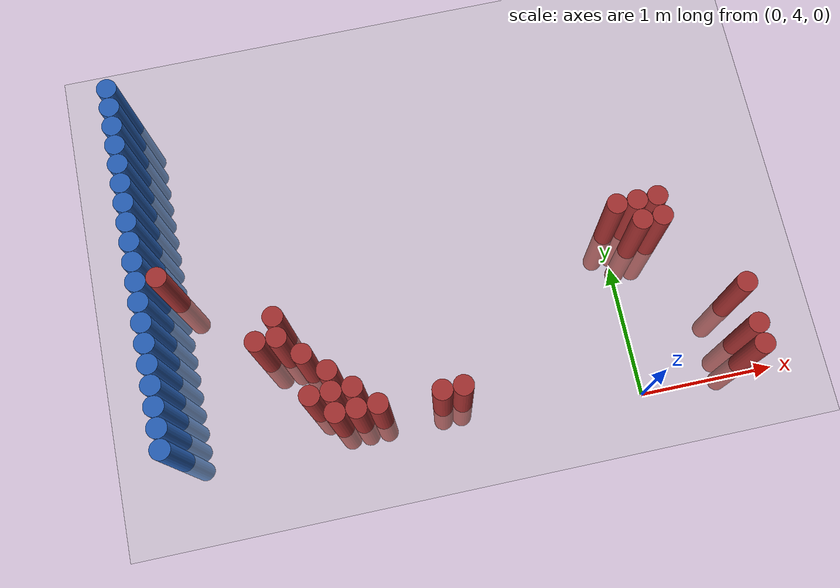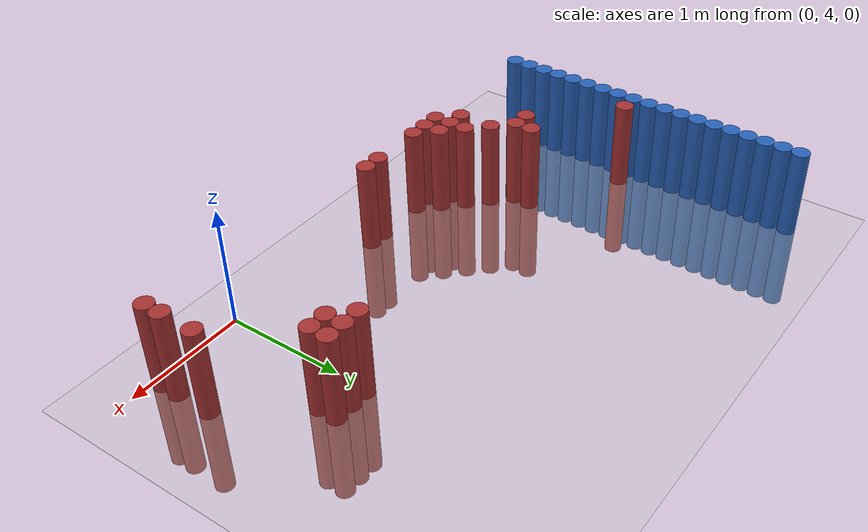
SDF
<sdf version="1.6">
 <world name="default">
  <model name="ground_plane">
   <static>1</static>
   <link name="link">
    <collision name="collision">
     <geometry><plane><normal>0 0 1</normal><size>100 100</size></plane></geometry>
     <surface><friction><ode><mu>100</mu><mu2>50</mu2></ode></friction></surface>
    </collision>
    <visual name="visual">
     <cast_shadows>0</cast_shadows>
     <geometry><plane><normal>0 0 1</normal><size>100 100</size></plane></geometry>
     <material>
      <script><uri>file://media/materials/scripts/gazebo.material</uri><name>Gazebo/Grey</name></script>
     </material>
    </visual>
   </link>
  </model>
  <model name="unit_cylinder_171">
   <static>1</static>
   <pose>-3.425000 4.225000 0.000000 0.000000 0.000000 0.000000</pose>
   <link name="link">
    <inertial>
     <mass>1</mass>
     <inertia><ixx>0.145833</ixx><ixy>0</ixy><ixz>0</ixz><iyy>0.145833</iyy><iyz>0</iyz><izz>0.125</izz></inertia>
    </inertial>
    <collision name="collision">
     <geometry><cylinder><radius>0.075000</radius><length>1.5</length></cylinder></geometry>
    </collision>
    <visual name="visual">
     <geometry><cylinder><radius>0.075000</radius><length>1.5</length></cylinder></geometry>
     <material>
      <ambient>0.152000 0.379000 0.720000 1</ambient>
      <diffuse>0.152000 0.379000 0.720000 1</diffuse>
     </material>
     <material>
      <script><name>Gazebo/Grey</name><uri>file://media/materials/scripts/gazebo.material</uri></script>
     </material>
    </visual>
   </link>
  </model>
  <model name="unit_cylinder_173">
   <static>1</static>
   <pose>-3.425000 4.375000 0.000000 0.000000 0.000000 0.000000</pose>
   <link name="link">
    <inertial>
     <mass>1</mass>
     <inertia><ixx>0.145833</ixx><ixy>0</ixy><ixz>0</ixz><iyy>0.145833</iyy><iyz>0</iyz><izz>0.125</izz></inertia>
    </inertial>
    <collision name="collision">
     <geometry><cylinder><radius>0.075000</radius><length>1.5</length></cylinder></geometry>
    </collision>
    <visual name="visual">
     <geometry><cylinder><radius>0.075000</radius><length>1.5</length></cylinder></geometry>
     <material>
      <ambient>0.152000 0.379000 0.720000 1</ambient>
      <diffuse>0.152000 0.379000 0.720000 1</diffuse>
     </material>
     <material>
      <script><name>Gazebo/Grey</name><uri>file://media/materials/scripts/gazebo.material</uri></script>
     </material>
    </visual>
   </link>
  </model>
  <model name="unit_cylinder_175">
   <static>1</static>
   <pose>-3.425000 4.525000 0.000000 0.000000 0.000000 0.000000</pose>
   <link name="link">
    <inertial>
     <mass>1</mass>
     <inertia><ixx>0.145833</ixx><ixy>0</ixy><ixz>0</ixz><iyy>0.145833</iyy><iyz>0</iyz><izz>0.125</izz></inertia>
    </inertial>
    <collision name="collision">
     <geometry><cylinder><radius>0.075000</radius><length>1.5</length></cylinder></geometry>
    </collision>
    <visual name="visual">
     <geometry><cylinder><radius>0.075000</radius><length>1.5</length></cylinder></geometry>
     <material>
      <ambient>0.152000 0.379000 0.720000 1</ambient>
      <diffuse>0.152000 0.379000 0.720000 1</diffuse>
     </material>
     <material>
      <script><name>Gazebo/Grey</name><uri>file://media/materials/scripts/gazebo.material</uri></script>
     </material>
    </visual>
   </link>
  </model>
  <model name="unit_cylinder_177">
   <static>1</static>
   <pose>-3.425000 4.675000 0.000000 0.000000 0.000000 0.000000</pose>
   <link name="link">
    <inertial>
     <mass>1</mass>
     <inertia><ixx>0.145833</ixx><ixy>0</ixy><ixz>0</ixz><iyy>0.145833</iyy><iyz>0</iyz><izz>0.125</izz></inertia>
    </inertial>
    <collision name="collision">
     <geometry><cylinder><radius>0.075000</radius><length>1.5</length></cylinder></geometry>
    </collision>
    <visual name="visual">
     <geometry><cylinder><radius>0.075000</radius><length>1.5</length></cylinder></geometry>
     <material>
      <ambient>0.152000 0.379000 0.720000 1</ambient>
      <diffuse>0.152000 0.379000 0.720000 1</diffuse>
     </material>
     <material>
      <script><name>Gazebo/Grey</name><uri>file://media/materials/scripts/gazebo.material</uri></script>
     </material>
    </visual>
   </link>
  </model>
  <model name="unit_cylinder_179">
   <static>1</static>
   <pose>-3.425000 4.825000 0.000000 0.000000 0.000000 0.000000</pose>
   <link name="link">
    <inertial>
     <mass>1</mass>
     <inertia><ixx>0.145833</ixx><ixy>0</ixy><ixz>0</ixz><iyy>0.145833</iyy><iyz>0</iyz><izz>0.125</izz></inertia>
    </inertial>
    <collision name="collision">
     <geometry><cylinder><radius>0.075000</radius><length>1.5</length></cylinder></geometry>
    </collision>
    <visual name="visual">
     <geometry><cylinder><radius>0.075000</radius><length>1.5</length></cylinder></geometry>
     <material>
      <ambient>0.152000 0.379000 0.720000 1</ambient>
      <diffuse>0.152000 0.379000 0.720000 1</diffuse>
     </material>
     <material>
      <script><name>Gazebo/Grey</name><uri>file://media/materials/scripts/gazebo.material</uri></script>
     </material>
    </visual>
   </link>
  </model>
  <model name="unit_cylinder_181">
   <static>1</static>
   <pose>-3.425000 4.975000 0.000000 0.000000 0.000000 0.000000</pose>
   <link name="link">
    <inertial>
     <mass>1</mass>
     <inertia><ixx>0.145833</ixx><ixy>0</ixy><ixz>0</ixz><iyy>0.145833</iyy><iyz>0</iyz><izz>0.125</izz></inertia>
    </inertial>
    <collision name="collision">
     <geometry><cylinder><radius>0.075000</radius><length>1.5</length></cylinder></geometry>
    </collision>
    <visual name="visual">
     <geometry><cylinder><radius>0.075000</radius><length>1.5</length></cylinder></geometry>
     <material>
      <ambient>0.152000 0.379000 0.720000 1</ambient>
      <diffuse>0.152000 0.379000 0.720000 1</diffuse>
     </material>
     <material>
      <script><name>Gazebo/Grey</name><uri>file://media/materials/scripts/gazebo.material</uri></script>
     </material>
    </visual>
   </link>
  </model>
  <model name="unit_cylinder_183">
   <static>1</static>
   <pose>-3.425000 5.125000 0.000000 0.000000 0.000000 0.000000</pose>
   <link name="link">
    <inertial>
     <mass>1</mass>
     <inertia><ixx>0.145833</ixx><ixy>0</ixy><ixz>0</ixz><iyy>0.145833</iyy><iyz>0</iyz><izz>0.125</izz></inertia>
    </inertial>
    <collision name="collision">
     <geometry><cylinder><radius>0.075000</radius><length>1.5</length></cylinder></geometry>
    </collision>
    <visual name="visual">
     <geometry><cylinder><radius>0.075000</radius><length>1.5</length></cylinder></geometry>
     <material>
      <ambient>0.152000 0.379000 0.720000 1</ambient>
      <diffuse>0.152000 0.379000 0.720000 1</diffuse>
     </material>
     <material>
      <script><name>Gazebo/Grey</name><uri>file://media/materials/scripts/gazebo.material</uri></script>
     </material>
    </visual>
   </link>
  </model>
  <model name="unit_cylinder_185">
   <static>1</static>
   <pose>-3.425000 5.275000 0.000000 0.000000 0.000000 0.000000</pose>
   <link name="link">
    <inertial>
     <mass>1</mass>
     <inertia><ixx>0.145833</ixx><ixy>0</ixy><ixz>0</ixz><iyy>0.145833</iyy><iyz>0</iyz><izz>0.125</izz></inertia>
    </inertial>
    <collision name="collision">
     <geometry><cylinder><radius>0.075000</radius><length>1.5</length></cylinder></geometry>
    </collision>
    <visual name="visual">
     <geometry><cylinder><radius>0.075000</radius><length>1.5</length></cylinder></geometry>
     <material>
      <ambient>0.152000 0.379000 0.720000 1</ambient>
      <diffuse>0.152000 0.379000 0.720000 1</diffuse>
     </material>
     <material>
      <script><name>Gazebo/Grey</name><uri>file://media/materials/scripts/gazebo.material</uri></script>
     </material>
    </visual>
   </link>
  </model>
  <model name="unit_cylinder_187">
   <static>1</static>
   <pose>-3.425000 5.425000 0.000000 0.000000 0.000000 0.000000</pose>
   <link name="link">
    <inertial>
     <mass>1</mass>
     <inertia><ixx>0.145833</ixx><ixy>0</ixy><ixz>0</ixz><iyy>0.145833</iyy><iyz>0</iyz><izz>0.125</izz></inertia>
    </inertial>
    <collision name="collision">
     <geometry><cylinder><radius>0.075000</radius><length>1.5</length></cylinder></geometry>
    </collision>
    <visual name="visual">
     <geometry><cylinder><radius>0.075000</radius><length>1.5</length></cylinder></geometry>
     <material>
      <ambient>0.152000 0.379000 0.720000 1</ambient>
      <diffuse>0.152000 0.379000 0.720000 1</diffuse>
     </material>
     <material>
      <script><name>Gazebo/Grey</name><uri>file://media/materials/scripts/gazebo.material</uri></script>
     </material>
    </visual>
   </link>
  </model>
  <model name="unit_cylinder_189">
   <static>1</static>
   <pose>-3.425000 5.575000 0.000000 0.000000 0.000000 0.000000</pose>
   <link name="link">
    <inertial>
     <mass>1</mass>
     <inertia><ixx>0.145833</ixx><ixy>0</ixy><ixz>0</ixz><iyy>0.145833</iyy><iyz>0</iyz><izz>0.125</izz></inertia>
    </inertial>
    <collision name="collision">
     <geometry><cylinder><radius>0.075000</radius><length>1.5</length></cylinder></geometry>
    </collision>
    <visual name="visual">
     <geometry><cylinder><radius>0.075000</radius><length>1.5</length></cylinder></geometry>
     <material>
      <ambient>0.152000 0.379000 0.720000 1</ambient>
      <diffuse>0.152000 0.379000 0.720000 1</diffuse>
     </material>
     <material>
      <script><name>Gazebo/Grey</name><uri>file://media/materials/scripts/gazebo.material</uri></script>
     </material>
    </visual>
   </link>
  </model>
  <model name="unit_cylinder_191">
   <static>1</static>
   <pose>-3.425000 5.725000 0.000000 0.000000 0.000000 0.000000</pose>
   <link name="link">
    <inertial>
     <mass>1</mass>
     <inertia><ixx>0.145833</ixx><ixy>0</ixy><ixz>0</ixz><iyy>0.145833</iyy><iyz>0</iyz><izz>0.125</izz></inertia>
    </inertial>
    <collision name="collision">
     <geometry><cylinder><radius>0.075000</radius><length>1.5</length></cylinder></geometry>
    </collision>
    <visual name="visual">
     <geometry><cylinder><radius>0.075000</radius><length>1.5</length></cylinder></geometry>
     <material>
      <ambient>0.152000 0.379000 0.720000 1</ambient>
      <diffuse>0.152000 0.379000 0.720000 1</diffuse>
     </material>
     <material>
      <script><name>Gazebo/Grey</name><uri>file://media/materials/scripts/gazebo.material</uri></script>
     </material>
    </visual>
   </link>
  </model>
  <model name="unit_cylinder_193">
   <static>1</static>
   <pose>-3.425000 5.875000 0.000000 0.000000 0.000000 0.000000</pose>
   <link name="link">
    <inertial>
     <mass>1</mass>
     <inertia><ixx>0.145833</ixx><ixy>0</ixy><ixz>0</ixz><iyy>0.145833</iyy><iyz>0</iyz><izz>0.125</izz></inertia>
    </inertial>
    <collision name="collision">
     <geometry><cylinder><radius>0.075000</radius><length>1.5</length></cylinder></geometry>
    </collision>
    <visual name="visual">
     <geometry><cylinder><radius>0.075000</radius><length>1.5</length></cylinder></geometry>
     <material>
      <ambient>0.152000 0.379000 0.720000 1</ambient>
      <diffuse>0.152000 0.379000 0.720000 1</diffuse>
     </material>
     <material>
      <script><name>Gazebo/Grey</name><uri>file://media/materials/scripts/gazebo.material</uri></script>
     </material>
    </visual>
   </link>
  </model>
  <model name="unit_cylinder_195">
   <static>1</static>
   <pose>-3.425000 6.025000 0.000000 0.000000 0.000000 0.000000</pose>
   <link name="link">
    <inertial>
     <mass>1</mass>
     <inertia><ixx>0.145833</ixx><ixy>0</ixy><ixz>0</ixz><iyy>0.145833</iyy><iyz>0</iyz><izz>0.125</izz></inertia>
    </inertial>
    <collision name="collision">
     <geometry><cylinder><radius>0.075000</radius><length>1.5</length></cylinder></geometry>
    </collision>
    <visual name="visual">
     <geometry><cylinder><radius>0.075000</radius><length>1.5</length></cylinder></geometry>
     <material>
      <ambient>0.152000 0.379000 0.720000 1</ambient>
      <diffuse>0.152000 0.379000 0.720000 1</diffuse>
     </material>
     <material>
      <script><name>Gazebo/Grey</name><uri>file://media/materials/scripts/gazebo.material</uri></script>
     </material>
    </visual>
   </link>
  </model>
  <model name="unit_cylinder_197">
   <static>1</static>
   <pose>-3.425000 6.175000 0.000000 0.000000 0.000000 0.000000</pose>
   <link name="link">
    <inertial>
     <mass>1</mass>
     <inertia><ixx>0.145833</ixx><ixy>0</ixy><ixz>0</ixz><iyy>0.145833</iyy><iyz>0</iyz><izz>0.125</izz></inertia>
    </inertial>
    <collision name="collision">
     <geometry><cylinder><radius>0.075000</radius><length>1.5</length></cylinder></geometry>
    </collision>
    <visual name="visual">
     <geometry><cylinder><radius>0.075000</radius><length>1.5</length></cylinder></geometry>
     <material>
      <ambient>0.152000 0.379000 0.720000 1</ambient>
      <diffuse>0.152000 0.379000 0.720000 1</diffuse>
     </material>
     <material>
      <script><name>Gazebo/Grey</name><uri>file://media/materials/scripts/gazebo.material</uri></script>
     </material>
    </visual>
   </link>
  </model>
  <model name="unit_cylinder_199">
   <static>1</static>
   <pose>-3.425000 6.325000 0.000000 0.000000 0.000000 0.000000</pose>
   <link name="link">
    <inertial>
     <mass>1</mass>
     <inertia><ixx>0.145833</ixx><ixy>0</ixy><ixz>0</ixz><iyy>0.145833</iyy><iyz>0</iyz><izz>0.125</izz></inertia>
    </inertial>
    <collision name="collision">
     <geometry><cylinder><radius>0.075000</radius><length>1.5</length></cylinder></geometry>
    </collision>
    <visual name="visual">
     <geometry><cylinder><radius>0.075000</radius><length>1.5</length></cylinder></geometry>
     <material>
      <ambient>0.152000 0.379000 0.720000 1</ambient>
      <diffuse>0.152000 0.379000 0.720000 1</diffuse>
     </material>
     <material>
      <script><name>Gazebo/Grey</name><uri>file://media/materials/scripts/gazebo.material</uri></script>
     </material>
    </visual>
   </link>
  </model>
  <model name="unit_cylinder_201">
   <static>1</static>
   <pose>-3.425000 6.475000 0.000000 0.000000 0.000000 0.000000</pose>
   <link name="link">
    <inertial>
     <mass>1</mass>
     <inertia><ixx>0.145833</ixx><ixy>0</ixy><ixz>0</ixz><iyy>0.145833</iyy><iyz>0</iyz><izz>0.125</izz></inertia>
    </inertial>
    <collision name="collision">
     <geometry><cylinder><radius>0.075000</radius><length>1.5</length></cylinder></geometry>
    </collision>
    <visual name="visual">
     <geometry><cylinder><radius>0.075000</radius><length>1.5</length></cylinder></geometry>
     <material>
      <ambient>0.152000 0.379000 0.720000 1</ambient>
      <diffuse>0.152000 0.379000 0.720000 1</diffuse>
     </material>
     <material>
      <script><name>Gazebo/Grey</name><uri>file://media/materials/scripts/gazebo.material</uri></script>
     </material>
    </visual>
   </link>
  </model>
  <model name="unit_cylinder_203">
   <static>1</static>
   <pose>-3.425000 6.625000 0.000000 0.000000 0.000000 0.000000</pose>
   <link name="link">
    <inertial>
     <mass>1</mass>
     <inertia><ixx>0.145833</ixx><ixy>0</ixy><ixz>0</ixz><iyy>0.145833</iyy><iyz>0</iyz><izz>0.125</izz></inertia>
    </inertial>
    <collision name="collision">
     <geometry><cylinder><radius>0.075000</radius><length>1.5</length></cylinder></geometry>
    </collision>
    <visual name="visual">
     <geometry><cylinder><radius>0.075000</radius><length>1.5</length></cylinder></geometry>
     <material>
      <ambient>0.152000 0.379000 0.720000 1</ambient>
      <diffuse>0.152000 0.379000 0.720000 1</diffuse>
     </material>
     <material>
      <script><name>Gazebo/Grey</name><uri>file://media/materials/scripts/gazebo.material</uri></script>
     </material>
    </visual>
   </link>
  </model>
  <model name="unit_cylinder_205">
   <static>1</static>
   <pose>-3.425000 6.775000 0.000000 0.000000 0.000000 0.000000</pose>
   <link name="link">
    <inertial>
     <mass>1</mass>
     <inertia><ixx>0.145833</ixx><ixy>0</ixy><ixz>0</ixz><iyy>0.145833</iyy><iyz>0</iyz><izz>0.125</izz></inertia>
    </inertial>
    <collision name="collision">
     <geometry><cylinder><radius>0.075000</radius><length>1.5</length></cylinder></geometry>
    </collision>
    <visual name="visual">
     <geometry><cylinder><radius>0.075000</radius><length>1.5</length></cylinder></geometry>
     <material>
      <ambient>0.152000 0.379000 0.720000 1</ambient>
      <diffuse>0.152000 0.379000 0.720000 1</diffuse>
     </material>
     <material>
      <script><name>Gazebo/Grey</name><uri>file://media/materials/scripts/gazebo.material</uri></script>
     </material>
    </visual>
   </link>
  </model>
  <model name="unit_cylinder_207">
   <static>1</static>
   <pose>-3.425000 6.925000 0.000000 0.000000 0.000000 0.000000</pose>
   <link name="link">
    <inertial>
     <mass>1</mass>
     <inertia><ixx>0.145833</ixx><ixy>0</ixy><ixz>0</ixz><iyy>0.145833</iyy><iyz>0</iyz><izz>0.125</izz></inertia>
    </inertial>
    <collision name="collision">
     <geometry><cylinder><radius>0.075000</radius><length>1.5</length></cylinder></geometry>
    </collision>
    <visual name="visual">
     <geometry><cylinder><radius>0.075000</radius><length>1.5</length></cylinder></geometry>
     <material>
      <ambient>0.152000 0.379000 0.720000 1</ambient>
      <diffuse>0.152000 0.379000 0.720000 1</diffuse>
     </material>
     <material>
      <script><name>Gazebo/Grey</name><uri>file://media/materials/scripts/gazebo.material</uri></script>
     </material>
    </visual>
   </link>
  </model>
  <model name="unit_cylinder_249">
   <static>1</static>
   <pose>-3.425000 4.225000 0.000000 0.000000 0.000000 0.000000</pose>
   <link name="link">
    <inertial>
     <mass>1</mass>
     <inertia><ixx>0.145833</ixx><ixy>0</ixy><ixz>0</ixz><iyy>0.145833</iyy><iyz>0</iyz><izz>0.125</izz></inertia>
    </inertial>
    <collision name="collision">
     <geometry><cylinder><radius>0.075000</radius><length>1.5</length></cylinder></geometry>
    </collision>
    <visual name="visual">
     <geometry><cylinder><radius>0.075000</radius><length>1.5</length></cylinder></geometry>
     <material>
      <ambient>0.152000 0.379000 0.720000 1</ambient>
      <diffuse>0.152000 0.379000 0.720000 1</diffuse>
     </material>
     <material>
      <script><name>Gazebo/Grey</name><uri>file://media/materials/scripts/gazebo.material</uri></script>
     </material>
    </visual>
   </link>
  </model>
  <model name="unit_cylinder_250">
   <static>1</static>
   <pose>-3.425000 4.375000 0.000000 0.000000 0.000000 0.000000</pose>
   <link name="link">
    <inertial>
     <mass>1</mass>
     <inertia><ixx>0.145833</ixx><ixy>0</ixy><ixz>0</ixz><iyy>0.145833</iyy><iyz>0</iyz><izz>0.125</izz></inertia>
    </inertial>
    <collision name="collision">
     <geometry><cylinder><radius>0.075000</radius><length>1.5</length></cylinder></geometry>
    </collision>
    <visual name="visual">
     <geometry><cylinder><radius>0.075000</radius><length>1.5</length></cylinder></geometry>
     <material>
      <ambient>0.152000 0.379000 0.720000 1</ambient>
      <diffuse>0.152000 0.379000 0.720000 1</diffuse>
     </material>
     <material>
      <script><name>Gazebo/Grey</name><uri>file://media/materials/scripts/gazebo.material</uri></script>
     </material>
    </visual>
   </link>
  </model>
  <model name="unit_cylinder_251">
   <static>1</static>
   <pose>-3.425000 4.525000 0.000000 0.000000 0.000000 0.000000</pose>
   <link name="link">
    <inertial>
     <mass>1</mass>
     <inertia><ixx>0.145833</ixx><ixy>0</ixy><ixz>0</ixz><iyy>0.145833</iyy><iyz>0</iyz><izz>0.125</izz></inertia>
    </inertial>
    <collision name="collision">
     <geometry><cylinder><radius>0.075000</radius><length>1.5</length></cylinder></geometry>
    </collision>
    <visual name="visual">
     <geometry><cylinder><radius>0.075000</radius><length>1.5</length></cylinder></geometry>
     <material>
      <ambient>0.152000 0.379000 0.720000 1</ambient>
      <diffuse>0.152000 0.379000 0.720000 1</diffuse>
     </material>
     <material>
      <script><name>Gazebo/Grey</name><uri>file://media/materials/scripts/gazebo.material</uri></script>
     </material>
    </visual>
   </link>
  </model>
  <model name="unit_cylinder_252">
   <static>1</static>
   <pose>-3.425000 4.675000 0.000000 0.000000 0.000000 0.000000</pose>
   <link name="link">
    <inertial>
     <mass>1</mass>
     <inertia><ixx>0.145833</ixx><ixy>0</ixy><ixz>0</ixz><iyy>0.145833</iyy><iyz>0</iyz><izz>0.125</izz></inertia>
    </inertial>
    <collision name="collision">
     <geometry><cylinder><radius>0.075000</radius><length>1.5</length></cylinder></geometry>
    </collision>
    <visual name="visual">
     <geometry><cylinder><radius>0.075000</radius><length>1.5</length></cylinder></geometry>
     <material>
      <ambient>0.152000 0.379000 0.720000 1</ambient>
      <diffuse>0.152000 0.379000 0.720000 1</diffuse>
     </material>
     <material>
      <script><name>Gazebo/Grey</name><uri>file://media/materials/scripts/gazebo.material</uri></script>
     </material>
    </visual>
   </link>
  </model>
  <model name="unit_cylinder_253">
   <static>1</static>
   <pose>-3.425000 4.825000 0.000000 0.000000 0.000000 0.000000</pose>
   <link name="link">
    <inertial>
     <mass>1</mass>
     <inertia><ixx>0.145833</ixx><ixy>0</ixy><ixz>0</ixz><iyy>0.145833</iyy><iyz>0</iyz><izz>0.125</izz></inertia>
    </inertial>
    <collision name="collision">
     <geometry><cylinder><radius>0.075000</radius><length>1.5</length></cylinder></geometry>
    </collision>
    <visual name="visual">
     <geometry><cylinder><radius>0.075000</radius><length>1.5</length></cylinder></geometry>
     <material>
      <ambient>0.152000 0.379000 0.720000 1</ambient>
      <diffuse>0.152000 0.379000 0.720000 1</diffuse>
     </material>
     <material>
      <script><name>Gazebo/Grey</name><uri>file://media/materials/scripts/gazebo.material</uri></script>
     </material>
    </visual>
   </link>
  </model>
  <model name="unit_cylinder_254">
   <static>1</static>
   <pose>-3.425000 4.975000 0.000000 0.000000 0.000000 0.000000</pose>
   <link name="link">
    <inertial>
     <mass>1</mass>
     <inertia><ixx>0.145833</ixx><ixy>0</ixy><ixz>0</ixz><iyy>0.145833</iyy><iyz>0</iyz><izz>0.125</izz></inertia>
    </inertial>
    <collision name="collision">
     <geometry><cylinder><radius>0.075000</radius><length>1.5</length></cylinder></geometry>
    </collision>
    <visual name="visual">
     <geometry><cylinder><radius>0.075000</radius><length>1.5</length></cylinder></geometry>
     <material>
      <ambient>0.152000 0.379000 0.720000 1</ambient>
      <diffuse>0.152000 0.379000 0.720000 1</diffuse>
     </material>
     <material>
      <script><name>Gazebo/Grey</name><uri>file://media/materials/scripts/gazebo.material</uri></script>
     </material>
    </visual>
   </link>
  </model>
  <model name="unit_cylinder_255">
   <static>1</static>
   <pose>-3.425000 5.125000 0.000000 0.000000 0.000000 0.000000</pose>
   <link name="link">
    <inertial>
     <mass>1</mass>
     <inertia><ixx>0.145833</ixx><ixy>0</ixy><ixz>0</ixz><iyy>0.145833</iyy><iyz>0</iyz><izz>0.125</izz></inertia>
    </inertial>
    <collision name="collision">
     <geometry><cylinder><radius>0.075000</radius><length>1.5</length></cylinder></geometry>
    </collision>
    <visual name="visual">
     <geometry><cylinder><radius>0.075000</radius><length>1.5</length></cylinder></geometry>
     <material>
      <ambient>0.152000 0.379000 0.720000 1</ambient>
      <diffuse>0.152000 0.379000 0.720000 1</diffuse>
     </material>
     <material>
      <script><name>Gazebo/Grey</name><uri>file://media/materials/scripts/gazebo.material</uri></script>
     </material>
    </visual>
   </link>
  </model>
  <model name="unit_cylinder_256">
   <static>1</static>
   <pose>-3.425000 5.275000 0.000000 0.000000 0.000000 0.000000</pose>
   <link name="link">
    <inertial>
     <mass>1</mass>
     <inertia><ixx>0.145833</ixx><ixy>0</ixy><ixz>0</ixz><iyy>0.145833</iyy><iyz>0</iyz><izz>0.125</izz></inertia>
    </inertial>
    <collision name="collision">
     <geometry><cylinder><radius>0.075000</radius><length>1.5</length></cylinder></geometry>
    </collision>
    <visual name="visual">
     <geometry><cylinder><radius>0.075000</radius><length>1.5</length></cylinder></geometry>
     <material>
      <ambient>0.152000 0.379000 0.720000 1</ambient>
      <diffuse>0.152000 0.379000 0.720000 1</diffuse>
     </material>
     <material>
      <script><name>Gazebo/Grey</name><uri>file://media/materials/scripts/gazebo.material</uri></script>
     </material>
    </visual>
   </link>
  </model>
  <model name="unit_cylinder_257">
   <static>1</static>
   <pose>-3.425000 5.425000 0.000000 0.000000 0.000000 0.000000</pose>
   <link name="link">
    <inertial>
     <mass>1</mass>
     <inertia><ixx>0.145833</ixx><ixy>0</ixy><ixz>0</ixz><iyy>0.145833</iyy><iyz>0</iyz><izz>0.125</izz></inertia>
    </inertial>
    <collision name="collision">
     <geometry><cylinder><radius>0.075000</radius><length>1.5</length></cylinder></geometry>
    </collision>
    <visual name="visual">
     <geometry><cylinder><radius>0.075000</radius><length>1.5</length></cylinder></geometry>
     <material>
      <ambient>0.152000 0.379000 0.720000 1</ambient>
      <diffuse>0.152000 0.379000 0.720000 1</diffuse>
     </material>
     <material>
      <script><name>Gazebo/Grey</name><uri>file://media/materials/scripts/gazebo.material</uri></script>
     </material>
    </visual>
   </link>
  </model>
  <model name="unit_cylinder_274">
   <static>1</static>
   <pose>-3.275000 5.425000 0.000000 0.000000 0.000000 0.000000</pose>
   <link name="link">
    <inertial>
     <mass>1</mass>
     <inertia><ixx>0.145833</ixx><ixy>0</ixy><ixz>0</ixz><iyy>0.145833</iyy><iyz>0</iyz><izz>0.125</izz></inertia>
    </inertial>
    <collision name="collision">
     <geometry><cylinder><radius>0.075000</radius><length>1.5</length></cylinder></geometry>
    </collision>
    <visual name="visual">
     <geometry><cylinder><radius>0.075000</radius><length>1.5</length></cylinder></geometry>
     <material>
      <ambient>0.648000 0.192000 0.192000 1</ambient>
      <diffuse>0.648000 0.192000 0.192000 1</diffuse>
     </material>
     <material>
      <script><name>Gazebo/Grey</name><uri>file://media/materials/scripts/gazebo.material</uri></script>
     </material>
    </visual>
   </link>
  </model>
  <model name="unit_cylinder_291">
   <static>1</static>
   <pose>-2.675000 4.825000 0.000000 0.000000 0.000000 0.000000</pose>
   <link name="link">
    <inertial>
     <mass>1</mass>
     <inertia><ixx>0.145833</ixx><ixy>0</ixy><ixz>0</ixz><iyy>0.145833</iyy><iyz>0</iyz><izz>0.125</izz></inertia>
    </inertial>
    <collision name="collision">
     <geometry><cylinder><radius>0.075000</radius><length>1.5</length></cylinder></geometry>
    </collision>
    <visual name="visual">
     <geometry><cylinder><radius>0.075000</radius><length>1.5</length></cylinder></geometry>
     <material>
      <ambient>0.648000 0.192000 0.192000 1</ambient>
      <diffuse>0.648000 0.192000 0.192000 1</diffuse>
     </material>
     <material>
      <script><name>Gazebo/Grey</name><uri>file://media/materials/scripts/gazebo.material</uri></script>
     </material>
    </visual>
   </link>
  </model>
  <model name="unit_cylinder_294">
   <static>1</static>
   <pose>-2.525000 4.825000 0.000000 0.000000 0.000000 0.000000</pose>
   <link name="link">
    <inertial>
     <mass>1</mass>
     <inertia><ixx>0.145833</ixx><ixy>0</ixy><ixz>0</ixz><iyy>0.145833</iyy><iyz>0</iyz><izz>0.125</izz></inertia>
    </inertial>
    <collision name="collision">
     <geometry><cylinder><radius>0.075000</radius><length>1.5</length></cylinder></geometry>
    </collision>
    <visual name="visual">
     <geometry><cylinder><radius>0.075000</radius><length>1.5</length></cylinder></geometry>
     <material>
      <ambient>0.648000 0.192000 0.192000 1</ambient>
      <diffuse>0.648000 0.192000 0.192000 1</diffuse>
     </material>
     <material>
      <script><name>Gazebo/Grey</name><uri>file://media/materials/scripts/gazebo.material</uri></script>
     </material>
    </visual>
   </link>
  </model>
  <model name="unit_cylinder_295">
   <static>1</static>
   <pose>-2.525000 4.975000 0.000000 0.000000 0.000000 0.000000</pose>
   <link name="link">
    <inertial>
     <mass>1</mass>
     <inertia><ixx>0.145833</ixx><ixy>0</ixy><ixz>0</ixz><iyy>0.145833</iyy><iyz>0</iyz><izz>0.125</izz></inertia>
    </inertial>
    <collision name="collision">
     <geometry><cylinder><radius>0.075000</radius><length>1.5</length></cylinder></geometry>
    </collision>
    <visual name="visual">
     <geometry><cylinder><radius>0.075000</radius><length>1.5</length></cylinder></geometry>
     <material>
      <ambient>0.648000 0.192000 0.192000 1</ambient>
      <diffuse>0.648000 0.192000 0.192000 1</diffuse>
     </material>
     <material>
      <script><name>Gazebo/Grey</name><uri>file://media/materials/scripts/gazebo.material</uri></script>
     </material>
    </visual>
   </link>
  </model>
  <model name="unit_cylinder_300">
   <static>1</static>
   <pose>-2.375000 4.375000 0.000000 0.000000 0.000000 0.000000</pose>
   <link name="link">
    <inertial>
     <mass>1</mass>
     <inertia><ixx>0.145833</ixx><ixy>0</ixy><ixz>0</ixz><iyy>0.145833</iyy><iyz>0</iyz><izz>0.125</izz></inertia>
    </inertial>
    <collision name="collision">
     <geometry><cylinder><radius>0.075000</radius><length>1.5</length></cylinder></geometry>
    </collision>
    <visual name="visual">
     <geometry><cylinder><radius>0.075000</radius><length>1.5</length></cylinder></geometry>
     <material>
      <ambient>0.648000 0.192000 0.192000 1</ambient>
      <diffuse>0.648000 0.192000 0.192000 1</diffuse>
     </material>
     <material>
      <script><name>Gazebo/Grey</name><uri>file://media/materials/scripts/gazebo.material</uri></script>
     </material>
    </visual>
   </link>
  </model>
  <model name="unit_cylinder_301">
   <static>1</static>
   <pose>-2.375000 4.675000 0.000000 0.000000 0.000000 0.000000</pose>
   <link name="link">
    <inertial>
     <mass>1</mass>
     <inertia><ixx>0.145833</ixx><ixy>0</ixy><ixz>0</ixz><iyy>0.145833</iyy><iyz>0</iyz><izz>0.125</izz></inertia>
    </inertial>
    <collision name="collision">
     <geometry><cylinder><radius>0.075000</radius><length>1.5</length></cylinder></geometry>
    </collision>
    <visual name="visual">
     <geometry><cylinder><radius>0.075000</radius><length>1.5</length></cylinder></geometry>
     <material>
      <ambient>0.648000 0.192000 0.192000 1</ambient>
      <diffuse>0.648000 0.192000 0.192000 1</diffuse>
     </material>
     <material>
      <script><name>Gazebo/Grey</name><uri>file://media/materials/scripts/gazebo.material</uri></script>
     </material>
    </visual>
   </link>
  </model>
  <model name="unit_cylinder_304">
   <static>1</static>
   <pose>-2.225000 4.225000 0.000000 0.000000 0.000000 0.000000</pose>
   <link name="link">
    <inertial>
     <mass>1</mass>
     <inertia><ixx>0.145833</ixx><ixy>0</ixy><ixz>0</ixz><iyy>0.145833</iyy><iyz>0</iyz><izz>0.125</izz></inertia>
    </inertial>
    <collision name="collision">
     <geometry><cylinder><radius>0.075000</radius><length>1.5</length></cylinder></geometry>
    </collision>
    <visual name="visual">
     <geometry><cylinder><radius>0.075000</radius><length>1.5</length></cylinder></geometry>
     <material>
      <ambient>0.648000 0.192000 0.192000 1</ambient>
      <diffuse>0.648000 0.192000 0.192000 1</diffuse>
     </material>
     <material>
      <script><name>Gazebo/Grey</name><uri>file://media/materials/scripts/gazebo.material</uri></script>
     </material>
    </visual>
   </link>
  </model>
  <model name="unit_cylinder_305">
   <static>1</static>
   <pose>-2.225000 4.375000 0.000000 0.000000 0.000000 0.000000</pose>
   <link name="link">
    <inertial>
     <mass>1</mass>
     <inertia><ixx>0.145833</ixx><ixy>0</ixy><ixz>0</ixz><iyy>0.145833</iyy><iyz>0</iyz><izz>0.125</izz></inertia>
    </inertial>
    <collision name="collision">
     <geometry><cylinder><radius>0.075000</radius><length>1.5</length></cylinder></geometry>
    </collision>
    <visual name="visual">
     <geometry><cylinder><radius>0.075000</radius><length>1.5</length></cylinder></geometry>
     <material>
      <ambient>0.648000 0.192000 0.192000 1</ambient>
      <diffuse>0.648000 0.192000 0.192000 1</diffuse>
     </material>
     <material>
      <script><name>Gazebo/Grey</name><uri>file://media/materials/scripts/gazebo.material</uri></script>
     </material>
    </visual>
   </link>
  </model>
  <model name="unit_cylinder_306">
   <static>1</static>
   <pose>-2.225000 4.525000 0.000000 0.000000 0.000000 0.000000</pose>
   <link name="link">
    <inertial>
     <mass>1</mass>
     <inertia><ixx>0.145833</ixx><ixy>0</ixy><ixz>0</ixz><iyy>0.145833</iyy><iyz>0</iyz><izz>0.125</izz></inertia>
    </inertial>
    <collision name="collision">
     <geometry><cylinder><radius>0.075000</radius><length>1.5</length></cylinder></geometry>
    </collision>
    <visual name="visual">
     <geometry><cylinder><radius>0.075000</radius><length>1.5</length></cylinder></geometry>
     <material>
      <ambient>0.648000 0.192000 0.192000 1</ambient>
      <diffuse>0.648000 0.192000 0.192000 1</diffuse>
     </material>
     <material>
      <script><name>Gazebo/Grey</name><uri>file://media/materials/scripts/gazebo.material</uri></script>
     </material>
    </visual>
   </link>
  </model>
  <model name="unit_cylinder_307">
   <static>1</static>
   <pose>-2.075000 4.225000 0.000000 0.000000 0.000000 0.000000</pose>
   <link name="link">
    <inertial>
     <mass>1</mass>
     <inertia><ixx>0.145833</ixx><ixy>0</ixy><ixz>0</ixz><iyy>0.145833</iyy><iyz>0</iyz><izz>0.125</izz></inertia>
    </inertial>
    <collision name="collision">
     <geometry><cylinder><radius>0.075000</radius><length>1.5</length></cylinder></geometry>
    </collision>
    <visual name="visual">
     <geometry><cylinder><radius>0.075000</radius><length>1.5</length></cylinder></geometry>
     <material>
      <ambient>0.648000 0.192000 0.192000 1</ambient>
      <diffuse>0.648000 0.192000 0.192000 1</diffuse>
     </material>
     <material>
      <script><name>Gazebo/Grey</name><uri>file://media/materials/scripts/gazebo.material</uri></script>
     </material>
    </visual>
   </link>
  </model>
  <model name="unit_cylinder_308">
   <static>1</static>
   <pose>-2.075000 4.375000 0.000000 0.000000 0.000000 0.000000</pose>
   <link name="link">
    <inertial>
     <mass>1</mass>
     <inertia><ixx>0.145833</ixx><ixy>0</ixy><ixz>0</ixz><iyy>0.145833</iyy><iyz>0</iyz><izz>0.125</izz></inertia>
    </inertial>
    <collision name="collision">
     <geometry><cylinder><radius>0.075000</radius><length>1.5</length></cylinder></geometry>
    </collision>
    <visual name="visual">
     <geometry><cylinder><radius>0.075000</radius><length>1.5</length></cylinder></geometry>
     <material>
      <ambient>0.648000 0.192000 0.192000 1</ambient>
      <diffuse>0.648000 0.192000 0.192000 1</diffuse>
     </material>
     <material>
      <script><name>Gazebo/Grey</name><uri>file://media/materials/scripts/gazebo.material</uri></script>
     </material>
    </visual>
   </link>
  </model>
  <model name="unit_cylinder_309">
   <static>1</static>
   <pose>-1.925000 4.225000 0.000000 0.000000 0.000000 0.000000</pose>
   <link name="link">
    <inertial>
     <mass>1</mass>
     <inertia><ixx>0.145833</ixx><ixy>0</ixy><ixz>0</ixz><iyy>0.145833</iyy><iyz>0</iyz><izz>0.125</izz></inertia>
    </inertial>
    <collision name="collision">
     <geometry><cylinder><radius>0.075000</radius><length>1.5</length></cylinder></geometry>
    </collision>
    <visual name="visual">
     <geometry><cylinder><radius>0.075000</radius><length>1.5</length></cylinder></geometry>
     <material>
      <ambient>0.648000 0.192000 0.192000 1</ambient>
      <diffuse>0.648000 0.192000 0.192000 1</diffuse>
     </material>
     <material>
      <script><name>Gazebo/Grey</name><uri>file://media/materials/scripts/gazebo.material</uri></script>
     </material>
    </visual>
   </link>
  </model>
  <model name="unit_cylinder_310">
   <static>1</static>
   <pose>-1.475000 4.225000 0.000000 0.000000 0.000000 0.000000</pose>
   <link name="link">
    <inertial>
     <mass>1</mass>
     <inertia><ixx>0.145833</ixx><ixy>0</ixy><ixz>0</ixz><iyy>0.145833</iyy><iyz>0</iyz><izz>0.125</izz></inertia>
    </inertial>
    <collision name="collision">
     <geometry><cylinder><radius>0.075000</radius><length>1.5</length></cylinder></geometry>
    </collision>
    <visual name="visual">
     <geometry><cylinder><radius>0.075000</radius><length>1.5</length></cylinder></geometry>
     <material>
      <ambient>0.648000 0.192000 0.192000 1</ambient>
      <diffuse>0.648000 0.192000 0.192000 1</diffuse>
     </material>
     <material>
      <script><name>Gazebo/Grey</name><uri>file://media/materials/scripts/gazebo.material</uri></script>
     </material>
    </visual>
   </link>
  </model>
  <model name="unit_cylinder_312">
   <static>1</static>
   <pose>-1.325000 4.225000 0.000000 0.000000 0.000000 0.000000</pose>
   <link name="link">
    <inertial>
     <mass>1</mass>
     <inertia><ixx>0.145833</ixx><ixy>0</ixy><ixz>0</ixz><iyy>0.145833</iyy><iyz>0</iyz><izz>0.125</izz></inertia>
    </inertial>
    <collision name="collision">
     <geometry><cylinder><radius>0.075000</radius><length>1.5</length></cylinder></geometry>
    </collision>
    <visual name="visual">
     <geometry><cylinder><radius>0.075000</radius><length>1.5</length></cylinder></geometry>
     <material>
      <ambient>0.648000 0.192000 0.192000 1</ambient>
      <diffuse>0.648000 0.192000 0.192000 1</diffuse>
     </material>
     <material>
      <script><name>Gazebo/Grey</name><uri>file://media/materials/scripts/gazebo.material</uri></script>
     </material>
    </visual>
   </link>
  </model>
  <model name="unit_cylinder_341">
   <static>1</static>
   <pose>0.025000 5.275000 0.000000 0.000000 0.000000 0.000000</pose>
   <link name="link">
    <inertial>
     <mass>1</mass>
     <inertia><ixx>0.145833</ixx><ixy>0</ixy><ixz>0</ixz><iyy>0.145833</iyy><iyz>0</iyz><izz>0.125</izz></inertia>
    </inertial>
    <collision name="collision">
     <geometry><cylinder><radius>0.075000</radius><length>1.5</length></cylinder></geometry>
    </collision>
    <visual name="visual">
     <geometry><cylinder><radius>0.075000</radius><length>1.5</length></cylinder></geometry>
     <material>
      <ambient>0.648000 0.192000 0.192000 1</ambient>
      <diffuse>0.648000 0.192000 0.192000 1</diffuse>
     </material>
     <material>
      <script><name>Gazebo/Grey</name><uri>file://media/materials/scripts/gazebo.material</uri></script>
     </material>
    </visual>
   </link>
  </model>
  <model name="unit_cylinder_353">
   <static>1</static>
   <pose>0.175000 5.125000 0.000000 0.000000 0.000000 0.000000</pose>
   <link name="link">
    <inertial>
     <mass>1</mass>
     <inertia><ixx>0.145833</ixx><ixy>0</ixy><ixz>0</ixz><iyy>0.145833</iyy><iyz>0</iyz><izz>0.125</izz></inertia>
    </inertial>
    <collision name="collision">
     <geometry><cylinder><radius>0.075000</radius><length>1.5</length></cylinder></geometry>
    </collision>
    <visual name="visual">
     <geometry><cylinder><radius>0.075000</radius><length>1.5</length></cylinder></geometry>
     <material>
      <ambient>0.648000 0.192000 0.192000 1</ambient>
      <diffuse>0.648000 0.192000 0.192000 1</diffuse>
     </material>
     <material>
      <script><name>Gazebo/Grey</name><uri>file://media/materials/scripts/gazebo.material</uri></script>
     </material>
    </visual>
   </link>
  </model>
  <model name="unit_cylinder_354">
   <static>1</static>
   <pose>0.175000 5.275000 0.000000 0.000000 0.000000 0.000000</pose>
   <link name="link">
    <inertial>
     <mass>1</mass>
     <inertia><ixx>0.145833</ixx><ixy>0</ixy><ixz>0</ixz><iyy>0.145833</iyy><iyz>0</iyz><izz>0.125</izz></inertia>
    </inertial>
    <collision name="collision">
     <geometry><cylinder><radius>0.075000</radius><length>1.5</length></cylinder></geometry>
    </collision>
    <visual name="visual">
     <geometry><cylinder><radius>0.075000</radius><length>1.5</length></cylinder></geometry>
     <material>
      <ambient>0.648000 0.192000 0.192000 1</ambient>
      <diffuse>0.648000 0.192000 0.192000 1</diffuse>
     </material>
     <material>
      <script><name>Gazebo/Grey</name><uri>file://media/materials/scripts/gazebo.material</uri></script>
     </material>
    </visual>
   </link>
  </model>
  <model name="unit_cylinder_359">
   <static>1</static>
   <pose>0.325000 5.125000 0.000000 0.000000 0.000000 0.000000</pose>
   <link name="link">
    <inertial>
     <mass>1</mass>
     <inertia><ixx>0.145833</ixx><ixy>0</ixy><ixz>0</ixz><iyy>0.145833</iyy><iyz>0</iyz><izz>0.125</izz></inertia>
    </inertial>
    <collision name="collision">
     <geometry><cylinder><radius>0.075000</radius><length>1.5</length></cylinder></geometry>
    </collision>
    <visual name="visual">
     <geometry><cylinder><radius>0.075000</radius><length>1.5</length></cylinder></geometry>
     <material>
      <ambient>0.648000 0.192000 0.192000 1</ambient>
      <diffuse>0.648000 0.192000 0.192000 1</diffuse>
     </material>
     <material>
      <script><name>Gazebo/Grey</name><uri>file://media/materials/scripts/gazebo.material</uri></script>
     </material>
    </visual>
   </link>
  </model>
  <model name="unit_cylinder_360">
   <static>1</static>
   <pose>0.325000 5.275000 0.000000 0.000000 0.000000 0.000000</pose>
   <link name="link">
    <inertial>
     <mass>1</mass>
     <inertia><ixx>0.145833</ixx><ixy>0</ixy><ixz>0</ixz><iyy>0.145833</iyy><iyz>0</iyz><izz>0.125</izz></inertia>
    </inertial>
    <collision name="collision">
     <geometry><cylinder><radius>0.075000</radius><length>1.5</length></cylinder></geometry>
    </collision>
    <visual name="visual">
     <geometry><cylinder><radius>0.075000</radius><length>1.5</length></cylinder></geometry>
     <material>
      <ambient>0.648000 0.192000 0.192000 1</ambient>
      <diffuse>0.648000 0.192000 0.192000 1</diffuse>
     </material>
     <material>
      <script><name>Gazebo/Grey</name><uri>file://media/materials/scripts/gazebo.material</uri></script>
     </material>
    </visual>
   </link>
  </model>
  <model name="unit_cylinder_379">
   <static>1</static>
   <pose>0.775000 4.075000 0.000000 0.000000 0.000000 0.000000</pose>
   <link name="link">
    <inertial>
     <mass>1</mass>
     <inertia><ixx>0.145833</ixx><ixy>0</ixy><ixz>0</ixz><iyy>0.145833</iyy><iyz>0</iyz><izz>0.125</izz></inertia>
    </inertial>
    <collision name="collision">
     <geometry><cylinder><radius>0.075000</radius><length>1.5</length></cylinder></geometry>
    </collision>
    <visual name="visual">
     <geometry><cylinder><radius>0.075000</radius><length>1.5</length></cylinder></geometry>
     <material>
      <ambient>0.648000 0.192000 0.192000 1</ambient>
      <diffuse>0.648000 0.192000 0.192000 1</diffuse>
     </material>
     <material>
      <script><name>Gazebo/Grey</name><uri>file://media/materials/scripts/gazebo.material</uri></script>
     </material>
    </visual>
   </link>
  </model>
  <model name="unit_cylinder_380">
   <static>1</static>
   <pose>0.775000 4.225000 0.000000 0.000000 0.000000 0.000000</pose>
   <link name="link">
    <inertial>
     <mass>1</mass>
     <inertia><ixx>0.145833</ixx><ixy>0</ixy><ixz>0</ixz><iyy>0.145833</iyy><iyz>0</iyz><izz>0.125</izz></inertia>
    </inertial>
    <collision name="collision">
     <geometry><cylinder><radius>0.075000</radius><length>1.5</length></cylinder></geometry>
    </collision>
    <visual name="visual">
     <geometry><cylinder><radius>0.075000</radius><length>1.5</length></cylinder></geometry>
     <material>
      <ambient>0.648000 0.192000 0.192000 1</ambient>
      <diffuse>0.648000 0.192000 0.192000 1</diffuse>
     </material>
     <material>
      <script><name>Gazebo/Grey</name><uri>file://media/materials/scripts/gazebo.material</uri></script>
     </material>
    </visual>
   </link>
  </model>
  <model name="unit_cylinder_381">
   <static>1</static>
   <pose>0.775000 4.525000 0.000000 0.000000 0.000000 0.000000</pose>
   <link name="link">
    <inertial>
     <mass>1</mass>
     <inertia><ixx>0.145833</ixx><ixy>0</ixy><ixz>0</ixz><iyy>0.145833</iyy><iyz>0</iyz><izz>0.125</izz></inertia>
    </inertial>
    <collision name="collision">
     <geometry><cylinder><radius>0.075000</radius><length>1.5</length></cylinder></geometry>
    </collision>
    <visual name="visual">
     <geometry><cylinder><radius>0.075000</radius><length>1.5</length></cylinder></geometry>
     <material>
      <ambient>0.648000 0.192000 0.192000 1</ambient>
      <diffuse>0.648000 0.192000 0.192000 1</diffuse>
     </material>
     <material>
      <script><name>Gazebo/Grey</name><uri>file://media/materials/scripts/gazebo.material</uri></script>
     </material>
    </visual>
   </link>
  </model>
 </world>
</sdf>
